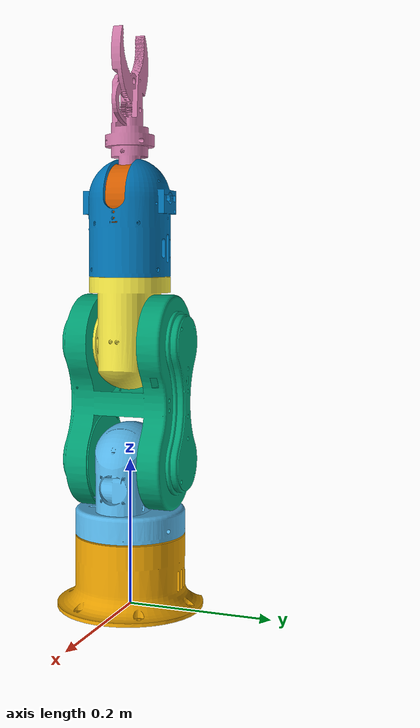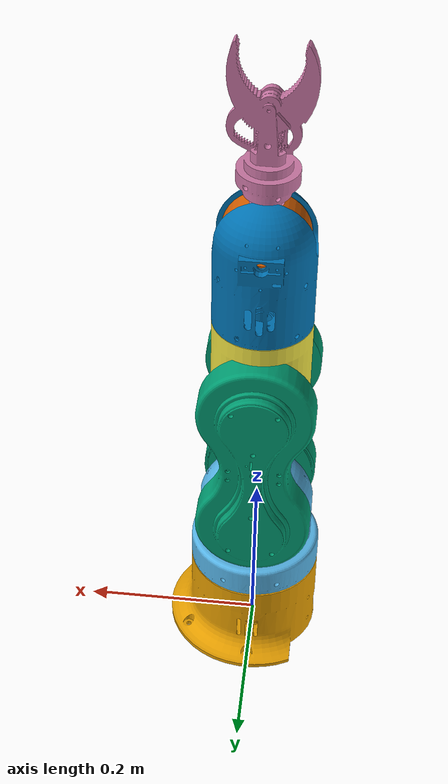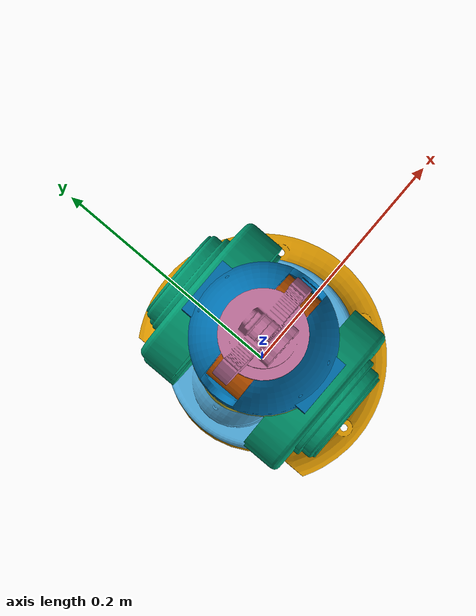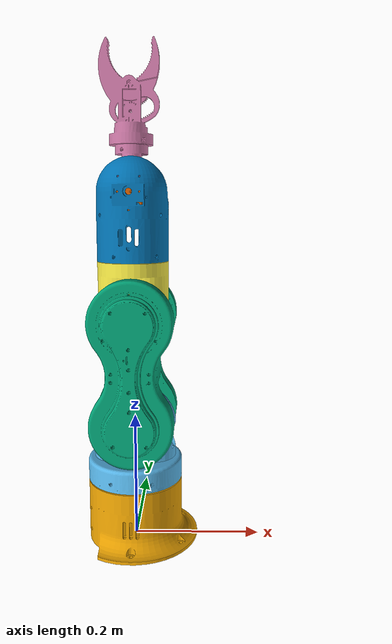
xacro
<?xml version="1.0"?>

<robot name="arm_robot" xmlns:xacro="http://www.ros.org/wiki/xacro">
    <gazebo>
        <plugin name="gazebo_ros_control" filename="libgazebo_ros_control.so">
            <robotNamespace>/arm_robot</robotNamespace>
            <robotSimType>gazebo_ros_control/DefaultRobotHWSim</robotSimType>
        </plugin>
    </gazebo>

    <link name="base">
        <visual>
            <origin xyz="0.00 0.00 0.00" rpy="0.00 0.00 0.00"/>
            <geometry>
                <mesh filename="package://arm_description/meshes/thorBase.STL" />
            </geometry>
        </visual>
        <collision>
            <origin xyz="0.00 0.00 0.00" rpy="0.00 0.00 0.00"/>
            <geometry>
                <mesh filename="package://arm_description/meshes/thorBase-col.STL" />
            </geometry>
        </collision>
        <inertial>
            <mass value="0.870"/>
            <origin xyz="0.006 -0.000910  0.050" rpy="0.0 0.0 0.0"/>
            <inertia ixx="0.002695" ixy="0.000005" ixz="-0.000177"
                     iyy="0.002629" iyz="0.000027"
                     izz="0.003357" />
        </inertial>
    </link>

    <joint name="link1_joint" type="revolute">
        <parent link="base"/>
        <child link="link1"/>
        <origin xyz="0.00 0.00 0.1" rpy="0.00 0.00 0.00"/>
        <limit velocity="3.14" effort="10" lower="-3.14159" upper="3.14159"/>
        <axis xyz="0 0 1"/>
    </joint>

   <link name="link1">
         <visual>
            <origin xyz="0.00 0.00 0.00" rpy="0.00 0.00 0.00"/>
            <geometry>
                <mesh filename="package://arm_description/meshes/thorArt1.STL" />
            </geometry>
        </visual>
        <collision>
            <origin xyz="0.00 0.00 0.00" rpy="0.00 0.00 0.00"/>
            <geometry>
                <mesh filename="package://arm_description/meshes/thorArt1-col.STL" />
            </geometry>
        </collision>
        <inertial>
            <mass value="1.309"/>
            <origin xyz="-0.000886 0.001  0.051" rpy="0.0 0.0 0.0"/>
            <inertia ixx="0.004144" ixy="0.000001" ixz="-0.000023"
                     iyy="0.004213" iyz="0.000019"
                     izz="0.003581" />
        </inertial>
    </link>

    <joint name="link2_joint" type="revolute">
        <parent link="link1"/>
        <child link="link2"/>
        <origin xyz="0.00 0.00 0.1" rpy="0.00 0.00 0.00"/>
        <limit velocity="3.14" effort="10" lower="-1.5708" upper="1.5708"/>
        <axis xyz="0 1 0"/>
    </joint>

    <link name="link2">
         <visual>
            <origin xyz="0.00 -0.035 0.00" rpy="0.00 0.00 0.00"/>
            <geometry>
                <mesh filename="package://arm_description/meshes/thorArt2.STL" />
            </geometry>
        </visual>
        <collision>
            <origin xyz="0.00 0.00 0.00" rpy="0.00 0.00 0.00"/>
            <geometry>
                <mesh filename="package://arm_description/meshes/thorArt2-col.STL" />
            </geometry>
        </collision>
        <inertial>
            <mass value="1.281"/>
            <origin xyz="0.000052 0.045  0.074" rpy="0.0 0.0 0.0"/>
            <inertia ixx="0.001287" ixy="0.000000" ixz="0.000000"
                     iyy="0.001291" iyz="0.000030"
                     izz="0.000808" />
        </inertial>
    </link>

    <joint name="link3_joint" type="revolute">
        <parent link="link2"/>
        <child link="link3"/>
        <origin xyz="0.00 0.00 0.16" rpy="0.00 0.00 0.00"/>
        <limit velocity="3.14" effort="10" lower="-1.5708" upper="1.5708"/>
        <axis xyz="0 1 0"/>
    </joint>

    <link name="link3">
         <visual>
            <origin xyz="0.00 0.00 0.00" rpy="0.00 0.00 0.00"/>
            <geometry>
                <mesh filename="package://arm_description/meshes/thorArt3.STL" />
            </geometry>
        </visual>
        <collision>
            <origin xyz="0.00 0.00 0.00" rpy="0.00 0.00 0.00"/>
            <geometry>
                <mesh filename="package://arm_description/meshes/thorArt3-col.STL" />
            </geometry>
        </collision>
        <inertial>
            <mass value="0.438124"/>
            <origin xyz="0.000 -0.006901  0.012738" rpy="0.0 0.0 0.0"/>
            <inertia ixx="0.001287" ixy="0.000000" ixz="0.000000"
                     iyy="0.001291" iyz="0.000030"
                     izz="0.000808" />
        </inertial>
    </link>

    <joint name="link4_joint" type="revolute">
        <parent link="link3"/>
        <child link="link4"/>
        <origin xyz="0.00 0.00 0.089" rpy="0.00 0.00 0.00"/>
        <limit velocity="3.14" effort="10" lower="-3.14159" upper="3.14159"/>
        <axis xyz="0 0 1"/>
    </joint>

    <link name="link4">
         <visual>
            <origin xyz="0.00 0.00 0.00" rpy="0.00 0.00 0.00"/>
            <geometry>
                <mesh filename="package://arm_description/meshes/thorArt4.STL" />
            </geometry>
        </visual>
        <collision>
            <origin xyz="0.00 0.00 0.00" rpy="0.00 0.00 0.00"/>
            <geometry>
                <mesh filename="package://arm_description/meshes/thorArt4-col.STL" />
            </geometry>
        </collision>
        <inertial>
            <mass value="0.405153"/>
            <origin xyz="-0.000103 -0.000055  0.041496" rpy="0.0 0.0 0.0"/>
            <inertia ixx="0.001630" ixy="0.000000" ixz="-0.000001"
                     iyy="0.001593" iyz="0.000001"
                     izz="0.000800" />
        </inertial>
    </link>

    <joint name="link5_joint" type="revolute">
        <parent link="link4"/>
        <child link="link5"/>
        <origin xyz="0.00 0.00 0.105" rpy="0.00 0.00 0.00"/>
        <limit velocity="3.14" effort="10" lower="-1.5708" upper="1.5708"/>
        <axis xyz="0 1 0"/>
    </joint>

    <link name="link5">
         <visual>
            <origin xyz="0.00 0.00 0.00" rpy="0.00 0.00 0.00"/>
            <geometry>
                <mesh filename="package://arm_description/meshes/thorArt5.STL" />
            </geometry>
        </visual>
        <collision>
            <origin xyz="0.00 0.00 0.00" rpy="0.00 0.00 0.00"/>
            <geometry>
                <mesh filename="package://arm_description/meshes/thorArt5-col.STL" />
            </geometry>
        </collision>
        <inertial>
            <mass value="0.720429"/>
            <origin xyz="0.0000 0.000010  -0.005650" rpy="0.0 0.0 0.0"/>
            <inertia ixx="0.000313" ixy="0.000000" ixz="0.000000"
                     iyy="0.000708" iyz="0.000000"
                     izz="0.000507" />
        </inertial>
    </link>

    <joint name="link6_joint" type="revolute">
        <parent link="link5"/>
        <child link="link6"/>
        <origin xyz="0.00 0.00 0.021000" rpy="0.00 0.00 0.00"/>
        <limit velocity="2.0" effort="10" lower="-3.14159" upper="3.14159"/>
        <axis xyz="0 0 1"/>
    </joint>

    <link name="link6">
         <visual>
            <origin xyz="0.00 0.00 0.00" rpy="0.00 0.00 0.00"/>
            <geometry>
                <mesh filename="package://arm_description/meshes/thorArt6.STL" />
            </geometry>
        </visual>
        <collision>
            <origin xyz="0.00 0.00 0.00" rpy="0.00 0.00 0.00"/>
            <geometry>
                <mesh filename="package://arm_description/meshes/thorArt6-col.STL" />
            </geometry>
        </collision>
        <inertial>
            <mass value="0.245211"/>
            <origin xyz="0.000000 0.000000  0.000000" rpy="0.0 0.0 0.0"/>
            <inertia ixx="0.000629" ixy="-0.000001" ixz="-0.000018"
                     iyy="0.000675" iyz="-0.000002"
                     izz="0.000127" />
        </inertial>
    </link>

    <transmission name="trans1">
        <type>transmission_interface/SimpleTransmission</type>
        <joint name="link1_joint">
            <hardwareInterface>hardware_interface/EffortJointInterface</hardwareInterface>
        </joint>
        <actuator name="motor1">
            <hardwareInterface>EffortJointInterface</hardwareInterface>
            <mechanicalReduction>1</mechanicalReduction>
        </actuator>
    </transmission>

    <transmission name="trans2">
        <type>transmission_interface/SimpleTransmission</type>
        <joint name="link2_joint">
            <hardwareInterface>hardware_interface/EffortJointInterface</hardwareInterface>
        </joint>
        <actuator name="motor2">
            <hardwareInterface>EffortJointInterface</hardwareInterface>
            <mechanicalReduction>1</mechanicalReduction>
        </actuator>
    </transmission>

    <transmission name="trans3">
        <type>transmission_interface/SimpleTransmission</type>
        <joint name="link3_joint">
            <hardwareInterface>hardware_interface/EffortJointInterface</hardwareInterface>
        </joint>
        <actuator name="motor3">
            <hardwareInterface>EffortJointInterface</hardwareInterface>
            <mechanicalReduction>1</mechanicalReduction>
        </actuator>
    </transmission>

    <transmission name="trans4">
        <type>transmission_interface/SimpleTransmission</type>
        <joint name="link4_joint">
            <hardwareInterface>hardware_interface/EffortJointInterface</hardwareInterface>
        </joint>
        <actuator name="motor4">
            <hardwareInterface>EffortJointInterface</hardwareInterface>
            <mechanicalReduction>1</mechanicalReduction>
        </actuator>
    </transmission>

    <transmission name="trans5">
        <type>transmission_interface/SimpleTransmission</type>
        <joint name="link5_joint">
            <hardwareInterface>hardware_interface/EffortJointInterface</hardwareInterface>
        </joint>
        <actuator name="motor5">
            <hardwareInterface>EffortJointInterface</hardwareInterface>
            <mechanicalReduction>1</mechanicalReduction>
        </actuator>
    </transmission>

    <transmission name="trans6">
        <type>transmission_interface/SimpleTransmission</type>
        <joint name="link6_joint">
            <hardwareInterface>hardware_interface/EffortJointInterface</hardwareInterface>
        </joint>
        <actuator name="motor6">
            <hardwareInterface>EffortJointInterface</hardwareInterface>
            <mechanicalReduction>1</mechanicalReduction>
        </actuator>
    </transmission>

</robot>
